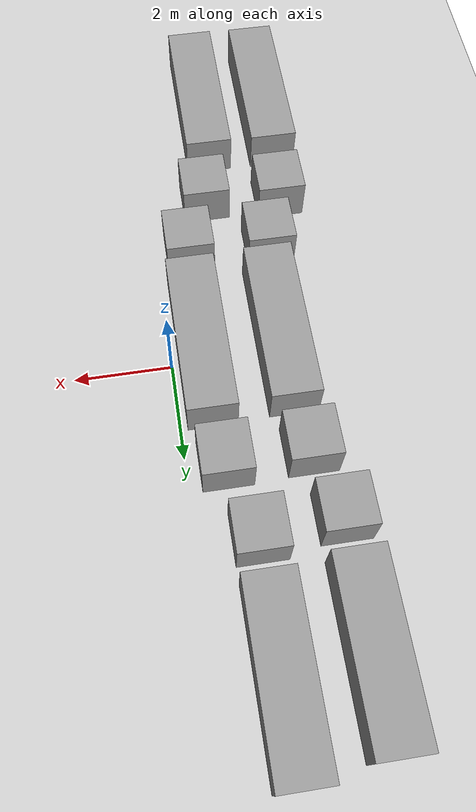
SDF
<sdf version="1.6">
 <world name="default">
  <light name="sun" type="directional">
   <pose>0 0 10 0 -0 0</pose>
   <diffuse>0.8 0.8 0.8 1</diffuse>
   <specular>0.1 0.1 0.1 1</specular>
   <attenuation>
    <range>1000</range>
    <constant>0.9</constant>
    <linear>0.01</linear>
    <quadratic>0.001</quadratic>
   </attenuation>
   <direction>-0.5 0.5 -1</direction>
  </light>
  <model name="ground_plane">
   <static>1</static>
   <link name="link">
    <collision name="collision">
     <geometry><plane><normal>0 0 1</normal><size>100 100</size></plane></geometry>
     <surface><friction><ode><mu>100</mu><mu2>50</mu2></ode></friction></surface>
    </collision>
    <visual name="visual">
     <cast_shadows>0</cast_shadows>
     <geometry><plane><normal>0 0 1</normal><size>100 100</size></plane></geometry>
     <material>
      <script><uri>file://media/materials/scripts/gazebo.material</uri><name>Gazebo/Grey</name></script>
     </material>
    </visual>
   </link>
  </model>
  <gravity>0 0 -1.62</gravity>
  <magnetic_field>6e-06 2.3e-05 -4.2e-05</magnetic_field>
  <atmosphere type="adiabatic"/>
  <physics name="default_physics" default="0" type="ode">
   <max_step_size>0.001</max_step_size>
   <real_time_factor>1</real_time_factor>
   <real_time_update_rate>1000</real_time_update_rate>
  </physics>
  <scene><ambient>0.4 0.4 0.4 1</ambient><background>0.7 0.7 0.7 1</background><shadows>1</shadows></scene>
  <spherical_coordinates>
   <surface_model>EARTH_WGS84</surface_model>
   <latitude_deg>0</latitude_deg>
   <longitude_deg>0</longitude_deg>
   <elevation>0</elevation>
   <heading_deg>0</heading_deg>
  </spherical_coordinates>
  <model name="unit_box_2">
   <pose>-2.42481 2.15449 0.499999 0 2e-06 0</pose>
   <link name="link">
    <inertial>
     <mass>1</mass>
     <inertia>
      <ixx>0.166667</ixx>
      <ixy>0</ixy>
      <ixz>0</ixz>
      <iyy>0.166667</iyy>
      <iyz>0</iyz>
      <izz>0.166667</izz>
     </inertia>
    </inertial>
    <collision name="collision"><geometry><box><size>1 1 1</size></box></geometry></collision>
    <visual name="visual">
     <geometry><box><size>1 1 1</size></box></geometry>
     <material>
      <script><name>Gazebo/Grey</name><uri>file://media/materials/scripts/gazebo.material</uri></script>
     </material>
    </visual>
   </link>
  </model>
  <model name="unit_box_3">
   <pose>-2.77455 3.53374 0.499999 2e-06 -0 0</pose>
   <link name="link">
    <inertial>
     <mass>1</mass>
     <inertia>
      <ixx>0.166667</ixx>
      <ixy>0</ixy>
      <ixz>0</ixz>
      <iyy>0.166667</iyy>
      <iyz>0</iyz>
      <izz>0.166667</izz>
     </inertia>
    </inertial>
    <collision name="collision"><geometry><box><size>1 1 1</size></box></geometry></collision>
    <visual name="visual">
     <geometry><box><size>1 1 1</size></box></geometry>
     <material>
      <script><name>Gazebo/Grey</name><uri>file://media/materials/scripts/gazebo.material</uri></script>
     </material>
    </visual>
   </link>
  </model>
  <model name="unit_box_6">
   <pose>-0.76228 2.19625 0.499999 -2e-06 0 0</pose>
   <link name="link">
    <inertial>
     <mass>1</mass>
     <inertia>
      <ixx>0.166667</ixx>
      <ixy>0</ixy>
      <ixz>0</ixz>
      <iyy>0.166667</iyy>
      <iyz>0</iyz>
      <izz>0.166667</izz>
     </inertia>
    </inertial>
    <collision name="collision"><geometry><box><size>1 1 1</size></box></geometry></collision>
    <visual name="visual">
     <geometry><box><size>1 1 1</size></box></geometry>
     <material>
      <script><name>Gazebo/Grey</name><uri>file://media/materials/scripts/gazebo.material</uri></script>
     </material>
    </visual>
   </link>
  </model>
  <model name="unit_box_7">
   <pose>-1.16782 3.6886 0.499999 2e-06 -0 0</pose>
   <link name="link">
    <inertial>
     <mass>1</mass>
     <inertia>
      <ixx>0.166667</ixx>
      <ixy>0</ixy>
      <ixz>0</ixz>
      <iyy>0.166667</iyy>
      <iyz>0</iyz>
      <izz>0.166667</izz>
     </inertia>
    </inertial>
    <collision name="collision"><geometry><box><size>1 1 1</size></box></geometry></collision>
    <visual name="visual">
     <geometry><box><size>1 1 1</size></box></geometry>
     <material>
      <script><name>Gazebo/Grey</name><uri>file://media/materials/scripts/gazebo.material</uri></script>
     </material>
    </visual>
   </link>
  </model>
  <model name="unit_box_8_0">
   <pose>-2.78788 6.01834 0.499995 -3e-06 -0 1e-06</pose>
   <link name="link">
    <inertial>
     <mass>1</mass>
     <inertia>
      <ixx>0.166667</ixx>
      <ixy>0</ixy>
      <ixz>0</ixz>
      <iyy>0.166667</iyy>
      <iyz>0</iyz>
      <izz>0.166667</izz>
     </inertia>
    </inertial>
    <collision name="collision"><geometry><box><size>1 3.35201 1</size></box></geometry></collision>
    <visual name="visual">
     <geometry><box><size>1 3.35201 1</size></box></geometry>
     <material>
      <script><name>Gazebo/Grey</name><uri>file://media/materials/scripts/gazebo.material</uri></script>
     </material>
    </visual>
   </link>
  </model>
  <model name="unit_box_8_0_clone">
   <pose>-1.17307 6.19541 0.499995 3e-06 -0 0</pose>
   <link name="link">
    <inertial>
     <mass>1</mass>
     <inertia>
      <ixx>0.166667</ixx>
      <ixy>0</ixy>
      <ixz>0</ixz>
      <iyy>0.166667</iyy>
      <iyz>0</iyz>
      <izz>0.166667</izz>
     </inertia>
    </inertial>
    <collision name="collision"><geometry><box><size>1 3.40701 1</size></box></geometry></collision>
    <visual name="visual">
     <geometry><box><size>1 3.40701 1</size></box></geometry>
     <material>
      <script><name>Gazebo/Grey</name><uri>file://media/materials/scripts/gazebo.material</uri></script>
     </material>
    </visual>
   </link>
  </model>
  <model name="unit_box_8_0_clone_0">
   <pose>-0.64707 -0.301951 0.499995 -3e-06 0 0</pose>
   <link name="link">
    <inertial>
     <mass>1</mass>
     <inertia>
      <ixx>0.166667</ixx>
      <ixy>0</ixy>
      <ixz>0</ixz>
      <iyy>0.166667</iyy>
      <iyz>0</iyz>
      <izz>0.166667</izz>
     </inertia>
    </inertial>
    <collision name="collision"><geometry><box><size>1 3.40701 1</size></box></geometry></collision>
    <visual name="visual">
     <geometry><box><size>1 3.40701 1</size></box></geometry>
     <material>
      <script><name>Gazebo/Grey</name><uri>file://media/materials/scripts/gazebo.material</uri></script>
     </material>
    </visual>
   </link>
  </model>
  <model name="unit_box_8_0_clone_1">
   <pose>-2.2833 -0.340274 0.499995 3e-06 -0 0</pose>
   <link name="link">
    <inertial>
     <mass>1</mass>
     <inertia>
      <ixx>0.166667</ixx>
      <ixy>0</ixy>
      <ixz>0</ixz>
      <iyy>0.166667</iyy>
      <iyz>0</iyz>
      <izz>0.166667</izz>
     </inertia>
    </inertial>
    <collision name="collision"><geometry><box><size>1 3.40701 1</size></box></geometry></collision>
    <visual name="visual">
     <geometry><box><size>1 3.40701 1</size></box></geometry>
     <material>
      <script><name>Gazebo/Grey</name><uri>file://media/materials/scripts/gazebo.material</uri></script>
     </material>
    </visual>
   </link>
  </model>
  <model name="unit_box_2_clone">
   <pose>-2.43837 -2.68651 0.499999 2e-06 -0 0</pose>
   <link name="link">
    <inertial>
     <mass>1</mass>
     <inertia>
      <ixx>0.166667</ixx>
      <ixy>0</ixy>
      <ixz>0</ixz>
      <iyy>0.166667</iyy>
      <iyz>0</iyz>
      <izz>0.166667</izz>
     </inertia>
    </inertial>
    <collision name="collision"><geometry><box><size>1 1 1</size></box></geometry></collision>
    <visual name="visual">
     <geometry><box><size>1 1 1</size></box></geometry>
     <material>
      <script><name>Gazebo/Grey</name><uri>file://media/materials/scripts/gazebo.material</uri></script>
     </material>
    </visual>
   </link>
  </model>
  <model name="unit_box_2_clone_0">
   <pose>-0.705586 -2.72925 0.499999 -2e-06 0 0</pose>
   <link name="link">
    <inertial>
     <mass>1</mass>
     <inertia>
      <ixx>0.166667</ixx>
      <ixy>0</ixy>
      <ixz>0</ixz>
      <iyy>0.166667</iyy>
      <iyz>0</iyz>
      <izz>0.166667</izz>
     </inertia>
    </inertial>
    <collision name="collision"><geometry><box><size>1 1 1</size></box></geometry></collision>
    <visual name="visual">
     <geometry><box><size>1 1 1</size></box></geometry>
     <material>
      <script><name>Gazebo/Grey</name><uri>file://media/materials/scripts/gazebo.material</uri></script>
     </material>
    </visual>
   </link>
  </model>
  <model name="unit_box_2_clone_1">
   <pose>-2.86666 -3.94186 0.499999 2e-06 -0 0</pose>
   <link name="link">
    <inertial>
     <mass>1</mass>
     <inertia>
      <ixx>0.166667</ixx>
      <ixy>0</ixy>
      <ixz>0</ixz>
      <iyy>0.166667</iyy>
      <iyz>0</iyz>
      <izz>0.166667</izz>
     </inertia>
    </inertial>
    <collision name="collision"><geometry><box><size>1 1 1</size></box></geometry></collision>
    <visual name="visual">
     <geometry><box><size>1 1 1</size></box></geometry>
     <material>
      <script><name>Gazebo/Grey</name><uri>file://media/materials/scripts/gazebo.material</uri></script>
     </material>
    </visual>
   </link>
  </model>
  <model name="unit_box_2_clone_2">
   <pose>-1.22766 -4.05894 0.499999 2e-06 -0 0</pose>
   <link name="link">
    <inertial>
     <mass>1</mass>
     <inertia>
      <ixx>0.166667</ixx>
      <ixy>0</ixy>
      <ixz>0</ixz>
      <iyy>0.166667</iyy>
      <iyz>0</iyz>
      <izz>0.166667</izz>
     </inertia>
    </inertial>
    <collision name="collision"><geometry><box><size>1 1 1</size></box></geometry></collision>
    <visual name="visual">
     <geometry><box><size>1 1 1</size></box></geometry>
     <material>
      <script><name>Gazebo/Grey</name><uri>file://media/materials/scripts/gazebo.material</uri></script>
     </material>
    </visual>
   </link>
  </model>
  <model name="unit_box_8_0_clone_1_clone">
   <pose>-2.93047 -6.6169 0.499995 3e-06 -0 0</pose>
   <link name="link">
    <inertial>
     <mass>1</mass>
     <inertia>
      <ixx>0.166667</ixx>
      <ixy>0</ixy>
      <ixz>0</ixz>
      <iyy>0.166667</iyy>
      <iyz>0</iyz>
      <izz>0.166667</izz>
     </inertia>
    </inertial>
    <collision name="collision"><geometry><box><size>1 3.40701 1</size></box></geometry></collision>
    <visual name="visual">
     <geometry><box><size>1 3.40701 1</size></box></geometry>
     <material>
      <script><name>Gazebo/Grey</name><uri>file://media/materials/scripts/gazebo.material</uri></script>
     </material>
    </visual>
   </link>
  </model>
  <model name="unit_box_8_0_clone_1_clone_0">
   <pose>-1.46826 -6.64327 0.499995 3e-06 -0 0</pose>
   <link name="link">
    <inertial>
     <mass>1</mass>
     <inertia>
      <ixx>0.166667</ixx>
      <ixy>0</ixy>
      <ixz>0</ixz>
      <iyy>0.166667</iyy>
      <iyz>0</iyz>
      <izz>0.166667</izz>
     </inertia>
    </inertial>
    <collision name="collision"><geometry><box><size>1 3.40701 1</size></box></geometry></collision>
    <visual name="visual">
     <geometry><box><size>1 3.40701 1</size></box></geometry>
     <material>
      <script><name>Gazebo/Grey</name><uri>file://media/materials/scripts/gazebo.material</uri></script>
     </material>
    </visual>
   </link>
  </model>
 </world>
</sdf>
